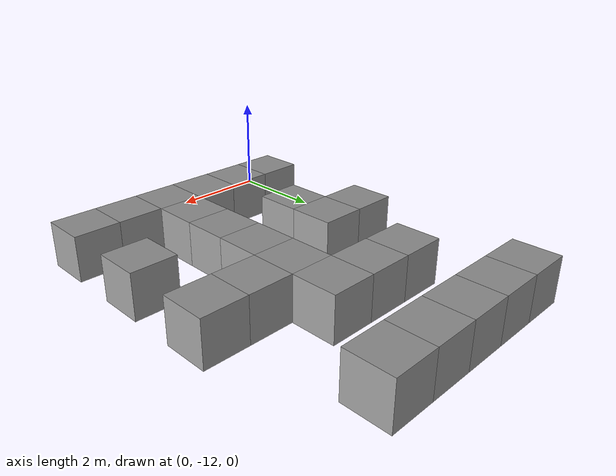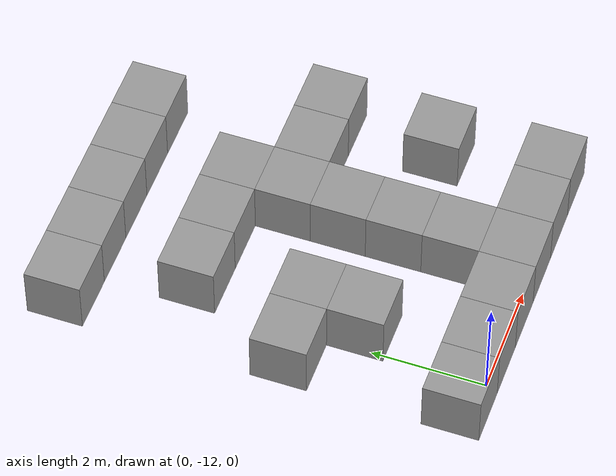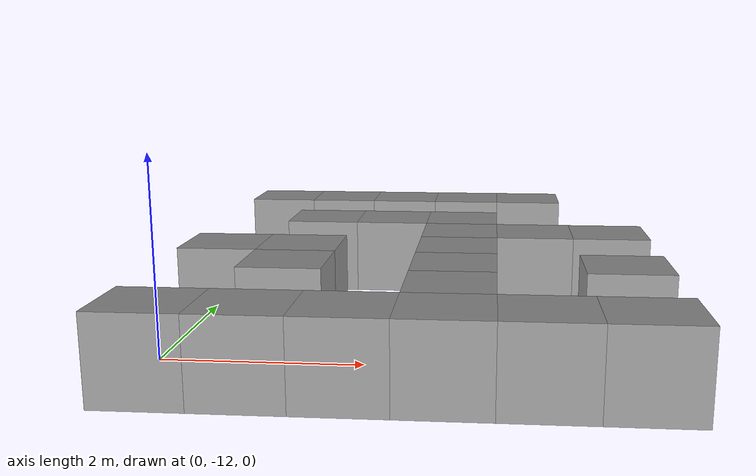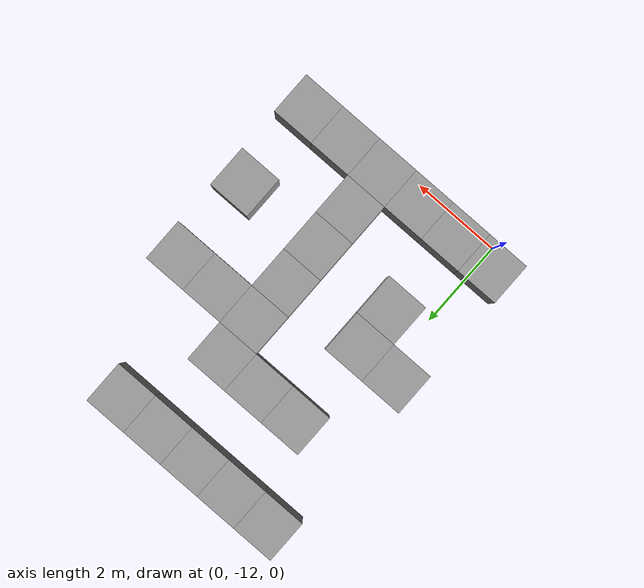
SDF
<sdf version="1.7">
 <model name="maze1">
  <link name="link_1_clone_159">
   <inertial>
    <mass>1</mass>
    <inertia>
     <ixx>0.166667</ixx>
     <ixy>0</ixy>
     <ixz>0</ixz>
     <iyy>0.166667</iyy>
     <iyz>0</iyz>
     <izz>0.166667</izz>
    </inertia>
   </inertial>
   <pose>3.75382 -7.62535 0 0 -0 0</pose>
   <visual name="visual">
    <geometry><box><size>1 1 1</size></box></geometry>
    <material>
     <lighting>1</lighting>
     <script><uri>file://media/materials/scripts/gazebo.material</uri><name>Gazebo/Grey</name></script>
     <shader type="pixel"><normal_map>__default__</normal_map></shader>
     <ambient>0.3 0.3 0.3 1</ambient>
     <diffuse>0.7 0.7 0.7 1</diffuse>
     <specular>0.01 0.01 0.01 1</specular>
     <emissive>0 0 0 1</emissive>
    </material>
   </visual>
   <collision name="collision">
    <geometry><box><size>1 1 1</size></box></geometry>
    <surface>
     <friction>
      <ode><mu>1</mu><mu2>1</mu2><fdir1>0 0 0</fdir1><slip1>0</slip1><slip2>0</slip2></ode>
      <torsional>
       <coefficient>1</coefficient>
       <patch_radius>0</patch_radius>
       <surface_radius>0</surface_radius>
       <use_patch_radius>1</use_patch_radius>
       <ode><slip>0</slip></ode>
      </torsional>
     </friction>
     <bounce><restitution_coefficient>0</restitution_coefficient><threshold>1e+06</threshold></bounce>
     <contact>
      <collide_without_contact>0</collide_without_contact>
      <collide_without_contact_bitmask>1</collide_without_contact_bitmask>
      <collide_bitmask>1</collide_bitmask>
      <ode>
       <soft_cfm>0</soft_cfm>
       <soft_erp>0.2</soft_erp>
       <kp>1e+13</kp>
       <kd>1</kd>
       <max_vel>0.01</max_vel>
       <min_depth>0</min_depth>
      </ode>
      <bullet>
       <split_impulse>1</split_impulse>
       <split_impulse_penetration_threshold>-0.01</split_impulse_penetration_threshold>
       <soft_cfm>0</soft_cfm>
       <soft_erp>0.2</soft_erp>
       <kp>1e+13</kp>
       <kd>1</kd>
      </bullet>
     </contact>
    </surface>
   </collision>
  </link>
  <link name="link_1_clone_161">
   <inertial>
    <mass>1</mass>
    <inertia>
     <ixx>0.166667</ixx>
     <ixy>0</ixy>
     <ixz>0</ixz>
     <iyy>0.166667</iyy>
     <iyz>0</iyz>
     <izz>0.166667</izz>
    </inertia>
   </inertial>
   <pose>4.75382 -7.62535 0 0 -0 0</pose>
   <visual name="visual">
    <geometry><box><size>1 1 1</size></box></geometry>
    <material>
     <lighting>1</lighting>
     <script><uri>file://media/materials/scripts/gazebo.material</uri><name>Gazebo/Grey</name></script>
     <shader type="pixel"><normal_map>__default__</normal_map></shader>
     <ambient>0.3 0.3 0.3 1</ambient>
     <diffuse>0.7 0.7 0.7 1</diffuse>
     <specular>0.01 0.01 0.01 1</specular>
     <emissive>0 0 0 1</emissive>
    </material>
   </visual>
   <collision name="collision">
    <geometry><box><size>1 1 1</size></box></geometry>
    <surface>
     <friction>
      <ode><mu>1</mu><mu2>1</mu2><fdir1>0 0 0</fdir1><slip1>0</slip1><slip2>0</slip2></ode>
      <torsional>
       <coefficient>1</coefficient>
       <patch_radius>0</patch_radius>
       <surface_radius>0</surface_radius>
       <use_patch_radius>1</use_patch_radius>
       <ode><slip>0</slip></ode>
      </torsional>
     </friction>
     <bounce><restitution_coefficient>0</restitution_coefficient><threshold>1e+06</threshold></bounce>
     <contact>
      <collide_without_contact>0</collide_without_contact>
      <collide_without_contact_bitmask>1</collide_without_contact_bitmask>
      <collide_bitmask>1</collide_bitmask>
      <ode>
       <soft_cfm>0</soft_cfm>
       <soft_erp>0.2</soft_erp>
       <kp>1e+13</kp>
       <kd>1</kd>
       <max_vel>0.01</max_vel>
       <min_depth>0</min_depth>
      </ode>
      <bullet>
       <split_impulse>1</split_impulse>
       <split_impulse_penetration_threshold>-0.01</split_impulse_penetration_threshold>
       <soft_cfm>0</soft_cfm>
       <soft_erp>0.2</soft_erp>
       <kp>1e+13</kp>
       <kd>1</kd>
      </bullet>
     </contact>
    </surface>
   </collision>
  </link>
  <link name="link_1_clone_170">
   <inertial>
    <mass>1</mass>
    <inertia>
     <ixx>0.166667</ixx>
     <ixy>0</ixy>
     <ixz>0</ixz>
     <iyy>0.166667</iyy>
     <iyz>0</iyz>
     <izz>0.166667</izz>
    </inertia>
   </inertial>
   <pose>3.75382 -4.62534 0 0 -0 0</pose>
   <visual name="visual">
    <geometry><box><size>1 1 1</size></box></geometry>
    <material>
     <lighting>1</lighting>
     <script><uri>file://media/materials/scripts/gazebo.material</uri><name>Gazebo/Grey</name></script>
     <shader type="pixel"><normal_map>__default__</normal_map></shader>
     <ambient>0.3 0.3 0.3 1</ambient>
     <diffuse>0.7 0.7 0.7 1</diffuse>
     <specular>0.01 0.01 0.01 1</specular>
     <emissive>0 0 0 1</emissive>
    </material>
   </visual>
   <collision name="collision">
    <geometry><box><size>1 1 1</size></box></geometry>
    <surface>
     <friction>
      <ode><mu>1</mu><mu2>1</mu2><fdir1>0 0 0</fdir1><slip1>0</slip1><slip2>0</slip2></ode>
      <torsional>
       <coefficient>1</coefficient>
       <patch_radius>0</patch_radius>
       <surface_radius>0</surface_radius>
       <use_patch_radius>1</use_patch_radius>
       <ode><slip>0</slip></ode>
      </torsional>
     </friction>
     <bounce><restitution_coefficient>0</restitution_coefficient><threshold>1e+06</threshold></bounce>
     <contact>
      <collide_without_contact>0</collide_without_contact>
      <collide_without_contact_bitmask>1</collide_without_contact_bitmask>
      <collide_bitmask>1</collide_bitmask>
      <ode>
       <soft_cfm>0</soft_cfm>
       <soft_erp>0.2</soft_erp>
       <kp>1e+13</kp>
       <kd>1</kd>
       <max_vel>0.01</max_vel>
       <min_depth>0</min_depth>
      </ode>
      <bullet>
       <split_impulse>1</split_impulse>
       <split_impulse_penetration_threshold>-0.01</split_impulse_penetration_threshold>
       <soft_cfm>0</soft_cfm>
       <soft_erp>0.2</soft_erp>
       <kp>1e+13</kp>
       <kd>1</kd>
      </bullet>
     </contact>
    </surface>
   </collision>
  </link>
  <link name="link_1_clone_171">
   <inertial>
    <mass>1</mass>
    <inertia>
     <ixx>0.166667</ixx>
     <ixy>0</ixy>
     <ixz>0</ixz>
     <iyy>0.166667</iyy>
     <iyz>0</iyz>
     <izz>0.166667</izz>
    </inertia>
   </inertial>
   <pose>2.75382 -4.62534 0 0 -0 0</pose>
   <visual name="visual">
    <geometry><box><size>1 1 1</size></box></geometry>
    <material>
     <lighting>1</lighting>
     <script><uri>file://media/materials/scripts/gazebo.material</uri><name>Gazebo/Grey</name></script>
     <shader type="pixel"><normal_map>__default__</normal_map></shader>
     <ambient>0.3 0.3 0.3 1</ambient>
     <diffuse>0.7 0.7 0.7 1</diffuse>
     <specular>0.01 0.01 0.01 1</specular>
     <emissive>0 0 0 1</emissive>
    </material>
   </visual>
   <collision name="collision">
    <geometry><box><size>1 1 1</size></box></geometry>
    <surface>
     <friction>
      <ode><mu>1</mu><mu2>1</mu2><fdir1>0 0 0</fdir1><slip1>0</slip1><slip2>0</slip2></ode>
      <torsional>
       <coefficient>1</coefficient>
       <patch_radius>0</patch_radius>
       <surface_radius>0</surface_radius>
       <use_patch_radius>1</use_patch_radius>
       <ode><slip>0</slip></ode>
      </torsional>
     </friction>
     <bounce><restitution_coefficient>0</restitution_coefficient><threshold>1e+06</threshold></bounce>
     <contact>
      <collide_without_contact>0</collide_without_contact>
      <collide_without_contact_bitmask>1</collide_without_contact_bitmask>
      <collide_bitmask>1</collide_bitmask>
      <ode>
       <soft_cfm>0</soft_cfm>
       <soft_erp>0.2</soft_erp>
       <kp>1e+13</kp>
       <kd>1</kd>
       <max_vel>0.01</max_vel>
       <min_depth>0</min_depth>
      </ode>
      <bullet>
       <split_impulse>1</split_impulse>
       <split_impulse_penetration_threshold>-0.01</split_impulse_penetration_threshold>
       <soft_cfm>0</soft_cfm>
       <soft_erp>0.2</soft_erp>
       <kp>1e+13</kp>
       <kd>1</kd>
      </bullet>
     </contact>
    </surface>
   </collision>
  </link>
  <link name="link_1_clone_183">
   <inertial>
    <mass>1</mass>
    <inertia>
     <ixx>0.166667</ixx>
     <ixy>0</ixy>
     <ixz>0</ixz>
     <iyy>0.166667</iyy>
     <iyz>0</iyz>
     <izz>0.166667</izz>
    </inertia>
   </inertial>
   <pose>4.75382 -9.62535 0 0 -0 0</pose>
   <visual name="visual">
    <geometry><box><size>1 1 1</size></box></geometry>
    <material>
     <lighting>1</lighting>
     <script><uri>file://media/materials/scripts/gazebo.material</uri><name>Gazebo/Grey</name></script>
     <shader type="pixel"><normal_map>__default__</normal_map></shader>
     <ambient>0.3 0.3 0.3 1</ambient>
     <diffuse>0.7 0.7 0.7 1</diffuse>
     <specular>0.01 0.01 0.01 1</specular>
     <emissive>0 0 0 1</emissive>
    </material>
   </visual>
   <collision name="collision">
    <geometry><box><size>1 1 1</size></box></geometry>
    <surface>
     <friction>
      <ode><mu>1</mu><mu2>1</mu2><fdir1>0 0 0</fdir1><slip1>0</slip1><slip2>0</slip2></ode>
      <torsional>
       <coefficient>1</coefficient>
       <patch_radius>0</patch_radius>
       <surface_radius>0</surface_radius>
       <use_patch_radius>1</use_patch_radius>
       <ode><slip>0</slip></ode>
      </torsional>
     </friction>
     <bounce><restitution_coefficient>0</restitution_coefficient><threshold>1e+06</threshold></bounce>
     <contact>
      <collide_without_contact>0</collide_without_contact>
      <collide_without_contact_bitmask>1</collide_without_contact_bitmask>
      <collide_bitmask>1</collide_bitmask>
      <ode>
       <soft_cfm>0</soft_cfm>
       <soft_erp>0.2</soft_erp>
       <kp>1e+13</kp>
       <kd>1</kd>
       <max_vel>0.01</max_vel>
       <min_depth>0</min_depth>
      </ode>
      <bullet>
       <split_impulse>1</split_impulse>
       <split_impulse_penetration_threshold>-0.01</split_impulse_penetration_threshold>
       <soft_cfm>0</soft_cfm>
       <soft_erp>0.2</soft_erp>
       <kp>1e+13</kp>
       <kd>1</kd>
      </bullet>
     </contact>
    </surface>
   </collision>
  </link>
  <link name="link_1_clone_184">
   <inertial>
    <mass>1</mass>
    <inertia>
     <ixx>0.166667</ixx>
     <ixy>0</ixy>
     <ixz>0</ixz>
     <iyy>0.166667</iyy>
     <iyz>0</iyz>
     <izz>0.166667</izz>
    </inertia>
   </inertial>
   <pose>2.75382 -9.62535 -0 0 -0 0</pose>
   <visual name="visual">
    <geometry><box><size>1 1 1</size></box></geometry>
    <material>
     <lighting>1</lighting>
     <script><uri>file://media/materials/scripts/gazebo.material</uri><name>Gazebo/Grey</name></script>
     <shader type="pixel"><normal_map>__default__</normal_map></shader>
     <ambient>0.3 0.3 0.3 1</ambient>
     <diffuse>0.7 0.7 0.7 1</diffuse>
     <specular>0.01 0.01 0.01 1</specular>
     <emissive>0 0 0 1</emissive>
    </material>
   </visual>
   <collision name="collision">
    <geometry><box><size>1 1 1</size></box></geometry>
    <surface>
     <friction>
      <ode><mu>1</mu><mu2>1</mu2><fdir1>0 0 0</fdir1><slip1>0</slip1><slip2>0</slip2></ode>
      <torsional>
       <coefficient>1</coefficient>
       <patch_radius>0</patch_radius>
       <surface_radius>0</surface_radius>
       <use_patch_radius>1</use_patch_radius>
       <ode><slip>0</slip></ode>
      </torsional>
     </friction>
     <bounce><restitution_coefficient>0</restitution_coefficient><threshold>1e+06</threshold></bounce>
     <contact>
      <collide_without_contact>0</collide_without_contact>
      <collide_without_contact_bitmask>1</collide_without_contact_bitmask>
      <collide_bitmask>1</collide_bitmask>
      <ode>
       <soft_cfm>0</soft_cfm>
       <soft_erp>0.2</soft_erp>
       <kp>1e+13</kp>
       <kd>1</kd>
       <max_vel>0.01</max_vel>
       <min_depth>0</min_depth>
      </ode>
      <bullet>
       <split_impulse>1</split_impulse>
       <split_impulse_penetration_threshold>-0.01</split_impulse_penetration_threshold>
       <soft_cfm>0</soft_cfm>
       <soft_erp>0.2</soft_erp>
       <kp>1e+13</kp>
       <kd>1</kd>
      </bullet>
     </contact>
    </surface>
   </collision>
  </link>
  <link name="link_1_clone_185">
   <inertial>
    <mass>1</mass>
    <inertia>
     <ixx>0.166667</ixx>
     <ixy>0</ixy>
     <ixz>0</ixz>
     <iyy>0.166667</iyy>
     <iyz>0</iyz>
     <izz>0.166667</izz>
    </inertia>
   </inertial>
   <pose>2.75382 -10.6254 -0 0 -0 0</pose>
   <visual name="visual">
    <geometry><box><size>1 1 1</size></box></geometry>
    <material>
     <lighting>1</lighting>
     <script><uri>file://media/materials/scripts/gazebo.material</uri><name>Gazebo/Grey</name></script>
     <shader type="pixel"><normal_map>__default__</normal_map></shader>
     <ambient>0.3 0.3 0.3 1</ambient>
     <diffuse>0.7 0.7 0.7 1</diffuse>
     <specular>0.01 0.01 0.01 1</specular>
     <emissive>0 0 0 1</emissive>
    </material>
   </visual>
   <collision name="collision">
    <geometry><box><size>1 1 1</size></box></geometry>
    <surface>
     <friction>
      <ode><mu>1</mu><mu2>1</mu2><fdir1>0 0 0</fdir1><slip1>0</slip1><slip2>0</slip2></ode>
      <torsional>
       <coefficient>1</coefficient>
       <patch_radius>0</patch_radius>
       <surface_radius>0</surface_radius>
       <use_patch_radius>1</use_patch_radius>
       <ode><slip>0</slip></ode>
      </torsional>
     </friction>
     <bounce><restitution_coefficient>0</restitution_coefficient><threshold>1e+06</threshold></bounce>
     <contact>
      <collide_without_contact>0</collide_without_contact>
      <collide_without_contact_bitmask>1</collide_without_contact_bitmask>
      <collide_bitmask>1</collide_bitmask>
      <ode>
       <soft_cfm>0</soft_cfm>
       <soft_erp>0.2</soft_erp>
       <kp>1e+13</kp>
       <kd>1</kd>
       <max_vel>0.01</max_vel>
       <min_depth>0</min_depth>
      </ode>
      <bullet>
       <split_impulse>1</split_impulse>
       <split_impulse_penetration_threshold>-0.01</split_impulse_penetration_threshold>
       <soft_cfm>0</soft_cfm>
       <soft_erp>0.2</soft_erp>
       <kp>1e+13</kp>
       <kd>1</kd>
      </bullet>
     </contact>
    </surface>
   </collision>
  </link>
  <link name="link_1_clone_186">
   <inertial>
    <mass>1</mass>
    <inertia>
     <ixx>0.166667</ixx>
     <ixy>0</ixy>
     <ixz>0</ixz>
     <iyy>0.166667</iyy>
     <iyz>0</iyz>
     <izz>0.166667</izz>
    </inertia>
   </inertial>
   <pose>2.75382 -8.62535 -0 0 -0 0</pose>
   <visual name="visual">
    <geometry><box><size>1 1 1</size></box></geometry>
    <material>
     <lighting>1</lighting>
     <script><uri>file://media/materials/scripts/gazebo.material</uri><name>Gazebo/Grey</name></script>
     <shader type="pixel"><normal_map>__default__</normal_map></shader>
     <ambient>0.3 0.3 0.3 1</ambient>
     <diffuse>0.7 0.7 0.7 1</diffuse>
     <specular>0.01 0.01 0.01 1</specular>
     <emissive>0 0 0 1</emissive>
    </material>
   </visual>
   <collision name="collision">
    <geometry><box><size>1 1 1</size></box></geometry>
    <surface>
     <friction>
      <ode><mu>1</mu><mu2>1</mu2><fdir1>0 0 0</fdir1><slip1>0</slip1><slip2>0</slip2></ode>
      <torsional>
       <coefficient>1</coefficient>
       <patch_radius>0</patch_radius>
       <surface_radius>0</surface_radius>
       <use_patch_radius>1</use_patch_radius>
       <ode><slip>0</slip></ode>
      </torsional>
     </friction>
     <bounce><restitution_coefficient>0</restitution_coefficient><threshold>1e+06</threshold></bounce>
     <contact>
      <collide_without_contact>0</collide_without_contact>
      <collide_without_contact_bitmask>1</collide_without_contact_bitmask>
      <collide_bitmask>1</collide_bitmask>
      <ode>
       <soft_cfm>0</soft_cfm>
       <soft_erp>0.2</soft_erp>
       <kp>1e+13</kp>
       <kd>1</kd>
       <max_vel>0.01</max_vel>
       <min_depth>0</min_depth>
      </ode>
      <bullet>
       <split_impulse>1</split_impulse>
       <split_impulse_penetration_threshold>-0.01</split_impulse_penetration_threshold>
       <soft_cfm>0</soft_cfm>
       <soft_erp>0.2</soft_erp>
       <kp>1e+13</kp>
       <kd>1</kd>
      </bullet>
     </contact>
    </surface>
   </collision>
  </link>
  <link name="link_1_clone_187">
   <inertial>
    <mass>1</mass>
    <inertia>
     <ixx>0.166667</ixx>
     <ixy>0</ixy>
     <ixz>0</ixz>
     <iyy>0.166667</iyy>
     <iyz>0</iyz>
     <izz>0.166667</izz>
    </inertia>
   </inertial>
   <pose>2.75382 -7.62535 0 0 -0 0</pose>
   <visual name="visual">
    <geometry><box><size>1 1 1</size></box></geometry>
    <material>
     <lighting>1</lighting>
     <script><uri>file://media/materials/scripts/gazebo.material</uri><name>Gazebo/Grey</name></script>
     <shader type="pixel"><normal_map>__default__</normal_map></shader>
     <ambient>0.3 0.3 0.3 1</ambient>
     <diffuse>0.7 0.7 0.7 1</diffuse>
     <specular>0.01 0.01 0.01 1</specular>
     <emissive>0 0 0 1</emissive>
    </material>
   </visual>
   <collision name="collision">
    <geometry><box><size>1 1 1</size></box></geometry>
    <surface>
     <friction>
      <ode><mu>1</mu><mu2>1</mu2><fdir1>0 0 0</fdir1><slip1>0</slip1><slip2>0</slip2></ode>
      <torsional>
       <coefficient>1</coefficient>
       <patch_radius>0</patch_radius>
       <surface_radius>0</surface_radius>
       <use_patch_radius>1</use_patch_radius>
       <ode><slip>0</slip></ode>
      </torsional>
     </friction>
     <bounce><restitution_coefficient>0</restitution_coefficient><threshold>1e+06</threshold></bounce>
     <contact>
      <collide_without_contact>0</collide_without_contact>
      <collide_without_contact_bitmask>1</collide_without_contact_bitmask>
      <collide_bitmask>1</collide_bitmask>
      <ode>
       <soft_cfm>0</soft_cfm>
       <soft_erp>0.2</soft_erp>
       <kp>1e+13</kp>
       <kd>1</kd>
       <max_vel>0.01</max_vel>
       <min_depth>0</min_depth>
      </ode>
      <bullet>
       <split_impulse>1</split_impulse>
       <split_impulse_penetration_threshold>-0.01</split_impulse_penetration_threshold>
       <soft_cfm>0</soft_cfm>
       <soft_erp>0.2</soft_erp>
       <kp>1e+13</kp>
       <kd>1</kd>
      </bullet>
     </contact>
    </surface>
   </collision>
  </link>
  <link name="link_1_clone_188">
   <inertial>
    <mass>1</mass>
    <inertia>
     <ixx>0.166667</ixx>
     <ixy>0</ixy>
     <ixz>0</ixz>
     <iyy>0.166667</iyy>
     <iyz>0</iyz>
     <izz>0.166667</izz>
    </inertia>
   </inertial>
   <pose>2.75382 -6.62535 0 0 -0 0</pose>
   <visual name="visual">
    <geometry><box><size>1 1 1</size></box></geometry>
    <material>
     <lighting>1</lighting>
     <script><uri>file://media/materials/scripts/gazebo.material</uri><name>Gazebo/Grey</name></script>
     <shader type="pixel"><normal_map>__default__</normal_map></shader>
     <ambient>0.3 0.3 0.3 1</ambient>
     <diffuse>0.7 0.7 0.7 1</diffuse>
     <specular>0.01 0.01 0.01 1</specular>
     <emissive>0 0 0 1</emissive>
    </material>
   </visual>
   <collision name="collision">
    <geometry><box><size>1 1 1</size></box></geometry>
    <surface>
     <friction>
      <ode><mu>1</mu><mu2>1</mu2><fdir1>0 0 0</fdir1><slip1>0</slip1><slip2>0</slip2></ode>
      <torsional>
       <coefficient>1</coefficient>
       <patch_radius>0</patch_radius>
       <surface_radius>0</surface_radius>
       <use_patch_radius>1</use_patch_radius>
       <ode><slip>0</slip></ode>
      </torsional>
     </friction>
     <bounce><restitution_coefficient>0</restitution_coefficient><threshold>1e+06</threshold></bounce>
     <contact>
      <collide_without_contact>0</collide_without_contact>
      <collide_without_contact_bitmask>1</collide_without_contact_bitmask>
      <collide_bitmask>1</collide_bitmask>
      <ode>
       <soft_cfm>0</soft_cfm>
       <soft_erp>0.2</soft_erp>
       <kp>1e+13</kp>
       <kd>1</kd>
       <max_vel>0.01</max_vel>
       <min_depth>0</min_depth>
      </ode>
      <bullet>
       <split_impulse>1</split_impulse>
       <split_impulse_penetration_threshold>-0.01</split_impulse_penetration_threshold>
       <soft_cfm>0</soft_cfm>
       <soft_erp>0.2</soft_erp>
       <kp>1e+13</kp>
       <kd>1</kd>
      </bullet>
     </contact>
    </surface>
   </collision>
  </link>
  <link name="link_1_clone_189">
   <inertial>
    <mass>1</mass>
    <inertia>
     <ixx>0.166667</ixx>
     <ixy>0</ixy>
     <ixz>0</ixz>
     <iyy>0.166667</iyy>
     <iyz>0</iyz>
     <izz>0.166667</izz>
    </inertia>
   </inertial>
   <pose>1.75382 -6.62535 -0 0 -0 0</pose>
   <visual name="visual">
    <geometry><box><size>1 1 1</size></box></geometry>
    <material>
     <lighting>1</lighting>
     <script><uri>file://media/materials/scripts/gazebo.material</uri><name>Gazebo/Grey</name></script>
     <shader type="pixel"><normal_map>__default__</normal_map></shader>
     <ambient>0.3 0.3 0.3 1</ambient>
     <diffuse>0.7 0.7 0.7 1</diffuse>
     <specular>0.01 0.01 0.01 1</specular>
     <emissive>0 0 0 1</emissive>
    </material>
   </visual>
   <collision name="collision">
    <geometry><box><size>1 1 1</size></box></geometry>
    <surface>
     <friction>
      <ode><mu>1</mu><mu2>1</mu2><fdir1>0 0 0</fdir1><slip1>0</slip1><slip2>0</slip2></ode>
      <torsional>
       <coefficient>1</coefficient>
       <patch_radius>0</patch_radius>
       <surface_radius>0</surface_radius>
       <use_patch_radius>1</use_patch_radius>
       <ode><slip>0</slip></ode>
      </torsional>
     </friction>
     <bounce><restitution_coefficient>0</restitution_coefficient><threshold>1e+06</threshold></bounce>
     <contact>
      <collide_without_contact>0</collide_without_contact>
      <collide_without_contact_bitmask>1</collide_without_contact_bitmask>
      <collide_bitmask>1</collide_bitmask>
      <ode>
       <soft_cfm>0</soft_cfm>
       <soft_erp>0.2</soft_erp>
       <kp>1e+13</kp>
       <kd>1</kd>
       <max_vel>0.01</max_vel>
       <min_depth>0</min_depth>
      </ode>
      <bullet>
       <split_impulse>1</split_impulse>
       <split_impulse_penetration_threshold>-0.01</split_impulse_penetration_threshold>
       <soft_cfm>0</soft_cfm>
       <soft_erp>0.2</soft_erp>
       <kp>1e+13</kp>
       <kd>1</kd>
      </bullet>
     </contact>
    </surface>
   </collision>
  </link>
  <link name="link_1_clone_190">
   <inertial>
    <mass>1</mass>
    <inertia>
     <ixx>0.166667</ixx>
     <ixy>0</ixy>
     <ixz>0</ixz>
     <iyy>0.166667</iyy>
     <iyz>0</iyz>
     <izz>0.166667</izz>
    </inertia>
   </inertial>
   <pose>0.753816 -6.62535 -0 0 -0 0</pose>
   <visual name="visual">
    <geometry><box><size>1 1 1</size></box></geometry>
    <material>
     <lighting>1</lighting>
     <script><uri>file://media/materials/scripts/gazebo.material</uri><name>Gazebo/Grey</name></script>
     <shader type="pixel"><normal_map>__default__</normal_map></shader>
     <ambient>0.3 0.3 0.3 1</ambient>
     <diffuse>0.7 0.7 0.7 1</diffuse>
     <specular>0.01 0.01 0.01 1</specular>
     <emissive>0 0 0 1</emissive>
    </material>
   </visual>
   <collision name="collision">
    <geometry><box><size>1 1 1</size></box></geometry>
    <surface>
     <friction>
      <ode><mu>1</mu><mu2>1</mu2><fdir1>0 0 0</fdir1><slip1>0</slip1><slip2>0</slip2></ode>
      <torsional>
       <coefficient>1</coefficient>
       <patch_radius>0</patch_radius>
       <surface_radius>0</surface_radius>
       <use_patch_radius>1</use_patch_radius>
       <ode><slip>0</slip></ode>
      </torsional>
     </friction>
     <bounce><restitution_coefficient>0</restitution_coefficient><threshold>1e+06</threshold></bounce>
     <contact>
      <collide_without_contact>0</collide_without_contact>
      <collide_without_contact_bitmask>1</collide_without_contact_bitmask>
      <collide_bitmask>1</collide_bitmask>
      <ode>
       <soft_cfm>0</soft_cfm>
       <soft_erp>0.2</soft_erp>
       <kp>1e+13</kp>
       <kd>1</kd>
       <max_vel>0.01</max_vel>
       <min_depth>0</min_depth>
      </ode>
      <bullet>
       <split_impulse>1</split_impulse>
       <split_impulse_penetration_threshold>-0.01</split_impulse_penetration_threshold>
       <soft_cfm>0</soft_cfm>
       <soft_erp>0.2</soft_erp>
       <kp>1e+13</kp>
       <kd>1</kd>
      </bullet>
     </contact>
    </surface>
   </collision>
  </link>
  <link name="link_1_clone_191">
   <inertial>
    <mass>1</mass>
    <inertia>
     <ixx>0.166667</ixx>
     <ixy>0</ixy>
     <ixz>0</ixz>
     <iyy>0.166667</iyy>
     <iyz>0</iyz>
     <izz>0.166667</izz>
    </inertia>
   </inertial>
   <pose>1.75382 -4.62534 0 0 -0 0</pose>
   <visual name="visual">
    <geometry><box><size>1 1 1</size></box></geometry>
    <material>
     <lighting>1</lighting>
     <script><uri>file://media/materials/scripts/gazebo.material</uri><name>Gazebo/Grey</name></script>
     <shader type="pixel"><normal_map>__default__</normal_map></shader>
     <ambient>0.3 0.3 0.3 1</ambient>
     <diffuse>0.7 0.7 0.7 1</diffuse>
     <specular>0.01 0.01 0.01 1</specular>
     <emissive>0 0 0 1</emissive>
    </material>
   </visual>
   <collision name="collision">
    <geometry><box><size>1 1 1</size></box></geometry>
    <surface>
     <friction>
      <ode><mu>1</mu><mu2>1</mu2><fdir1>0 0 0</fdir1><slip1>0</slip1><slip2>0</slip2></ode>
      <torsional>
       <coefficient>1</coefficient>
       <patch_radius>0</patch_radius>
       <surface_radius>0</surface_radius>
       <use_patch_radius>1</use_patch_radius>
       <ode><slip>0</slip></ode>
      </torsional>
     </friction>
     <bounce><restitution_coefficient>0</restitution_coefficient><threshold>1e+06</threshold></bounce>
     <contact>
      <collide_without_contact>0</collide_without_contact>
      <collide_without_contact_bitmask>1</collide_without_contact_bitmask>
      <collide_bitmask>1</collide_bitmask>
      <ode>
       <soft_cfm>0</soft_cfm>
       <soft_erp>0.2</soft_erp>
       <kp>1e+13</kp>
       <kd>1</kd>
       <max_vel>0.01</max_vel>
       <min_depth>0</min_depth>
      </ode>
      <bullet>
       <split_impulse>1</split_impulse>
       <split_impulse_penetration_threshold>-0.01</split_impulse_penetration_threshold>
       <soft_cfm>0</soft_cfm>
       <soft_erp>0.2</soft_erp>
       <kp>1e+13</kp>
       <kd>1</kd>
      </bullet>
     </contact>
    </surface>
   </collision>
  </link>
  <link name="link_1_clone_192">
   <inertial>
    <mass>1</mass>
    <inertia>
     <ixx>0.166667</ixx>
     <ixy>0</ixy>
     <ixz>0</ixz>
     <iyy>0.166667</iyy>
     <iyz>0</iyz>
     <izz>0.166667</izz>
    </inertia>
   </inertial>
   <pose>0.753816 -4.62534 -0 0 -0 0</pose>
   <visual name="visual">
    <geometry><box><size>1 1 1</size></box></geometry>
    <material>
     <lighting>1</lighting>
     <script><uri>file://media/materials/scripts/gazebo.material</uri><name>Gazebo/Grey</name></script>
     <shader type="pixel"><normal_map>__default__</normal_map></shader>
     <ambient>0.3 0.3 0.3 1</ambient>
     <diffuse>0.7 0.7 0.7 1</diffuse>
     <specular>0.01 0.01 0.01 1</specular>
     <emissive>0 0 0 1</emissive>
    </material>
   </visual>
   <collision name="collision">
    <geometry><box><size>1 1 1</size></box></geometry>
    <surface>
     <friction>
      <ode><mu>1</mu><mu2>1</mu2><fdir1>0 0 0</fdir1><slip1>0</slip1><slip2>0</slip2></ode>
      <torsional>
       <coefficient>1</coefficient>
       <patch_radius>0</patch_radius>
       <surface_radius>0</surface_radius>
       <use_patch_radius>1</use_patch_radius>
       <ode><slip>0</slip></ode>
      </torsional>
     </friction>
     <bounce><restitution_coefficient>0</restitution_coefficient><threshold>1e+06</threshold></bounce>
     <contact>
      <collide_without_contact>0</collide_without_contact>
      <collide_without_contact_bitmask>1</collide_without_contact_bitmask>
      <collide_bitmask>1</collide_bitmask>
      <ode>
       <soft_cfm>0</soft_cfm>
       <soft_erp>0.2</soft_erp>
       <kp>1e+13</kp>
       <kd>1</kd>
       <max_vel>0.01</max_vel>
       <min_depth>0</min_depth>
      </ode>
      <bullet>
       <split_impulse>1</split_impulse>
       <split_impulse_penetration_threshold>-0.01</split_impulse_penetration_threshold>
       <soft_cfm>0</soft_cfm>
       <soft_erp>0.2</soft_erp>
       <kp>1e+13</kp>
       <kd>1</kd>
      </bullet>
     </contact>
    </surface>
   </collision>
  </link>
  <link name="link_1_clone_193">
   <inertial>
    <mass>1</mass>
    <inertia>
     <ixx>0.166667</ixx>
     <ixy>0</ixy>
     <ixz>0</ixz>
     <iyy>0.166667</iyy>
     <iyz>0</iyz>
     <izz>0.166667</izz>
    </inertia>
   </inertial>
   <pose>-0.246184 -4.62534 -0 0 -0 0</pose>
   <visual name="visual">
    <geometry><box><size>1 1 1</size></box></geometry>
    <material>
     <lighting>1</lighting>
     <script><uri>file://media/materials/scripts/gazebo.material</uri><name>Gazebo/Grey</name></script>
     <shader type="pixel"><normal_map>__default__</normal_map></shader>
     <ambient>0.3 0.3 0.3 1</ambient>
     <diffuse>0.7 0.7 0.7 1</diffuse>
     <specular>0.01 0.01 0.01 1</specular>
     <emissive>0 0 0 1</emissive>
    </material>
   </visual>
   <collision name="collision">
    <geometry><box><size>1 1 1</size></box></geometry>
    <surface>
     <friction>
      <ode><mu>1</mu><mu2>1</mu2><fdir1>0 0 0</fdir1><slip1>0</slip1><slip2>0</slip2></ode>
      <torsional>
       <coefficient>1</coefficient>
       <patch_radius>0</patch_radius>
       <surface_radius>0</surface_radius>
       <use_patch_radius>1</use_patch_radius>
       <ode><slip>0</slip></ode>
      </torsional>
     </friction>
     <bounce><restitution_coefficient>0</restitution_coefficient><threshold>1e+06</threshold></bounce>
     <contact>
      <collide_without_contact>0</collide_without_contact>
      <collide_without_contact_bitmask>1</collide_without_contact_bitmask>
      <collide_bitmask>1</collide_bitmask>
      <ode>
       <soft_cfm>0</soft_cfm>
       <soft_erp>0.2</soft_erp>
       <kp>1e+13</kp>
       <kd>1</kd>
       <max_vel>0.01</max_vel>
       <min_depth>0</min_depth>
      </ode>
      <bullet>
       <split_impulse>1</split_impulse>
       <split_impulse_penetration_threshold>-0.01</split_impulse_penetration_threshold>
       <soft_cfm>0</soft_cfm>
       <soft_erp>0.2</soft_erp>
       <kp>1e+13</kp>
       <kd>1</kd>
      </bullet>
     </contact>
    </surface>
   </collision>
  </link>
  <link name="link_1_clone_200">
   <inertial>
    <mass>1</mass>
    <inertia>
     <ixx>0.166667</ixx>
     <ixy>0</ixy>
     <ixz>0</ixz>
     <iyy>0.166667</iyy>
     <iyz>0</iyz>
     <izz>0.166667</izz>
    </inertia>
   </inertial>
   <pose>-0.246184 -8.62535 -0 0 -0 0</pose>
   <visual name="visual">
    <geometry><box><size>1 1 1</size></box></geometry>
    <material>
     <lighting>1</lighting>
     <script><uri>file://media/materials/scripts/gazebo.material</uri><name>Gazebo/Grey</name></script>
     <shader type="pixel"><normal_map>__default__</normal_map></shader>
     <ambient>0.3 0.3 0.3 1</ambient>
     <diffuse>0.7 0.7 0.7 1</diffuse>
     <specular>0.01 0.01 0.01 1</specular>
     <emissive>0 0 0 1</emissive>
    </material>
   </visual>
   <collision name="collision">
    <geometry><box><size>1 1 1</size></box></geometry>
    <surface>
     <friction>
      <ode><mu>1</mu><mu2>1</mu2><fdir1>0 0 0</fdir1><slip1>0</slip1><slip2>0</slip2></ode>
      <torsional>
       <coefficient>1</coefficient>
       <patch_radius>0</patch_radius>
       <surface_radius>0</surface_radius>
       <use_patch_radius>1</use_patch_radius>
       <ode><slip>0</slip></ode>
      </torsional>
     </friction>
     <bounce><restitution_coefficient>0</restitution_coefficient><threshold>1e+06</threshold></bounce>
     <contact>
      <collide_without_contact>0</collide_without_contact>
      <collide_without_contact_bitmask>1</collide_without_contact_bitmask>
      <collide_bitmask>1</collide_bitmask>
      <ode>
       <soft_cfm>0</soft_cfm>
       <soft_erp>0.2</soft_erp>
       <kp>1e+13</kp>
       <kd>1</kd>
       <max_vel>0.01</max_vel>
       <min_depth>0</min_depth>
      </ode>
      <bullet>
       <split_impulse>1</split_impulse>
       <split_impulse_penetration_threshold>-0.01</split_impulse_penetration_threshold>
       <soft_cfm>0</soft_cfm>
       <soft_erp>0.2</soft_erp>
       <kp>1e+13</kp>
       <kd>1</kd>
      </bullet>
     </contact>
    </surface>
   </collision>
  </link>
  <link name="link_1_clone_201">
   <inertial>
    <mass>1</mass>
    <inertia>
     <ixx>0.166667</ixx>
     <ixy>0</ixy>
     <ixz>0</ixz>
     <iyy>0.166667</iyy>
     <iyz>0</iyz>
     <izz>0.166667</izz>
    </inertia>
   </inertial>
   <pose>0.753816 -8.62535 -0 0 -0 0</pose>
   <visual name="visual">
    <geometry><box><size>1 1 1</size></box></geometry>
    <material>
     <lighting>1</lighting>
     <script><uri>file://media/materials/scripts/gazebo.material</uri><name>Gazebo/Grey</name></script>
     <shader type="pixel"><normal_map>__default__</normal_map></shader>
     <ambient>0.3 0.3 0.3 1</ambient>
     <diffuse>0.7 0.7 0.7 1</diffuse>
     <specular>0.01 0.01 0.01 1</specular>
     <emissive>0 0 0 1</emissive>
    </material>
   </visual>
   <collision name="collision">
    <geometry><box><size>1 1 1</size></box></geometry>
    <surface>
     <friction>
      <ode><mu>1</mu><mu2>1</mu2><fdir1>0 0 0</fdir1><slip1>0</slip1><slip2>0</slip2></ode>
      <torsional>
       <coefficient>1</coefficient>
       <patch_radius>0</patch_radius>
       <surface_radius>0</surface_radius>
       <use_patch_radius>1</use_patch_radius>
       <ode><slip>0</slip></ode>
      </torsional>
     </friction>
     <bounce><restitution_coefficient>0</restitution_coefficient><threshold>1e+06</threshold></bounce>
     <contact>
      <collide_without_contact>0</collide_without_contact>
      <collide_without_contact_bitmask>1</collide_without_contact_bitmask>
      <collide_bitmask>1</collide_bitmask>
      <ode>
       <soft_cfm>0</soft_cfm>
       <soft_erp>0.2</soft_erp>
       <kp>1e+13</kp>
       <kd>1</kd>
       <max_vel>0.01</max_vel>
       <min_depth>0</min_depth>
      </ode>
      <bullet>
       <split_impulse>1</split_impulse>
       <split_impulse_penetration_threshold>-0.01</split_impulse_penetration_threshold>
       <soft_cfm>0</soft_cfm>
       <soft_erp>0.2</soft_erp>
       <kp>1e+13</kp>
       <kd>1</kd>
      </bullet>
     </contact>
    </surface>
   </collision>
  </link>
  <link name="link_1_clone_202">
   <inertial>
    <mass>1</mass>
    <inertia>
     <ixx>0.166667</ixx>
     <ixy>0</ixy>
     <ixz>0</ixz>
     <iyy>0.166667</iyy>
     <iyz>0</iyz>
     <izz>0.166667</izz>
    </inertia>
   </inertial>
   <pose>0.753816 -9.62535 -0 0 -0 0</pose>
   <visual name="visual">
    <geometry><box><size>1 1 1</size></box></geometry>
    <material>
     <lighting>1</lighting>
     <script><uri>file://media/materials/scripts/gazebo.material</uri><name>Gazebo/Grey</name></script>
     <shader type="pixel"><normal_map>__default__</normal_map></shader>
     <ambient>0.3 0.3 0.3 1</ambient>
     <diffuse>0.7 0.7 0.7 1</diffuse>
     <specular>0.01 0.01 0.01 1</specular>
     <emissive>0 0 0 1</emissive>
    </material>
   </visual>
   <collision name="collision">
    <geometry><box><size>1 1 1</size></box></geometry>
    <surface>
     <friction>
      <ode><mu>1</mu><mu2>1</mu2><fdir1>0 0 0</fdir1><slip1>0</slip1><slip2>0</slip2></ode>
      <torsional>
       <coefficient>1</coefficient>
       <patch_radius>0</patch_radius>
       <surface_radius>0</surface_radius>
       <use_patch_radius>1</use_patch_radius>
       <ode><slip>0</slip></ode>
      </torsional>
     </friction>
     <bounce><restitution_coefficient>0</restitution_coefficient><threshold>1e+06</threshold></bounce>
     <contact>
      <collide_without_contact>0</collide_without_contact>
      <collide_without_contact_bitmask>1</collide_without_contact_bitmask>
      <collide_bitmask>1</collide_bitmask>
      <ode>
       <soft_cfm>0</soft_cfm>
       <soft_erp>0.2</soft_erp>
       <kp>1e+13</kp>
       <kd>1</kd>
       <max_vel>0.01</max_vel>
       <min_depth>0</min_depth>
      </ode>
      <bullet>
       <split_impulse>1</split_impulse>
       <split_impulse_penetration_threshold>-0.01</split_impulse_penetration_threshold>
       <soft_cfm>0</soft_cfm>
       <soft_erp>0.2</soft_erp>
       <kp>1e+13</kp>
       <kd>1</kd>
      </bullet>
     </contact>
    </surface>
   </collision>
  </link>
  <link name="link_1_clone_44">
   <inertial>
    <mass>1</mass>
    <inertia>
     <ixx>0.166667</ixx>
     <ixy>0</ixy>
     <ixz>0</ixz>
     <iyy>0.166667</iyy>
     <iyz>0</iyz>
     <izz>0.166667</izz>
    </inertia>
   </inertial>
   <pose>-0.246184 -11.6253 -0 0 -0 0</pose>
   <visual name="visual">
    <geometry><box><size>1 1 1</size></box></geometry>
    <material>
     <lighting>1</lighting>
     <script><uri>file://media/materials/scripts/gazebo.material</uri><name>Gazebo/Grey</name></script>
     <shader type="pixel"><normal_map>__default__</normal_map></shader>
     <ambient>0.3 0.3 0.3 1</ambient>
     <diffuse>0.7 0.7 0.7 1</diffuse>
     <specular>0.01 0.01 0.01 1</specular>
     <emissive>0 0 0 1</emissive>
    </material>
   </visual>
   <collision name="collision">
    <geometry><box><size>1 1 1</size></box></geometry>
    <surface>
     <friction>
      <ode><mu>1</mu><mu2>1</mu2><fdir1>0 0 0</fdir1><slip1>0</slip1><slip2>0</slip2></ode>
      <torsional>
       <coefficient>1</coefficient>
       <patch_radius>0</patch_radius>
       <surface_radius>0</surface_radius>
       <use_patch_radius>1</use_patch_radius>
       <ode><slip>0</slip></ode>
      </torsional>
     </friction>
     <bounce><restitution_coefficient>0</restitution_coefficient><threshold>1e+06</threshold></bounce>
     <contact>
      <collide_without_contact>0</collide_without_contact>
      <collide_without_contact_bitmask>1</collide_without_contact_bitmask>
      <collide_bitmask>1</collide_bitmask>
      <ode>
       <soft_cfm>0</soft_cfm>
       <soft_erp>0.2</soft_erp>
       <kp>1e+13</kp>
       <kd>1</kd>
       <max_vel>0.01</max_vel>
       <min_depth>0</min_depth>
      </ode>
      <bullet>
       <split_impulse>1</split_impulse>
       <split_impulse_penetration_threshold>-0.01</split_impulse_penetration_threshold>
       <soft_cfm>0</soft_cfm>
       <soft_erp>0.2</soft_erp>
       <kp>1e+13</kp>
       <kd>1</kd>
      </bullet>
     </contact>
    </surface>
   </collision>
  </link>
  <link name="link_1_clone_45">
   <inertial>
    <mass>1</mass>
    <inertia>
     <ixx>0.166667</ixx>
     <ixy>0</ixy>
     <ixz>0</ixz>
     <iyy>0.166667</iyy>
     <iyz>0</iyz>
     <izz>0.166667</izz>
    </inertia>
   </inertial>
   <pose>0.753816 -11.6253 -0 0 -0 0</pose>
   <visual name="visual">
    <geometry><box><size>1 1 1</size></box></geometry>
    <material>
     <lighting>1</lighting>
     <script><uri>file://media/materials/scripts/gazebo.material</uri><name>Gazebo/Grey</name></script>
     <shader type="pixel"><normal_map>__default__</normal_map></shader>
     <ambient>0.3 0.3 0.3 1</ambient>
     <diffuse>0.7 0.7 0.7 1</diffuse>
     <specular>0.01 0.01 0.01 1</specular>
     <emissive>0 0 0 1</emissive>
    </material>
   </visual>
   <collision name="collision">
    <geometry><box><size>1 1 1</size></box></geometry>
    <surface>
     <friction>
      <ode><mu>1</mu><mu2>1</mu2><fdir1>0 0 0</fdir1><slip1>0</slip1><slip2>0</slip2></ode>
      <torsional>
       <coefficient>1</coefficient>
       <patch_radius>0</patch_radius>
       <surface_radius>0</surface_radius>
       <use_patch_radius>1</use_patch_radius>
       <ode><slip>0</slip></ode>
      </torsional>
     </friction>
     <bounce><restitution_coefficient>0</restitution_coefficient><threshold>1e+06</threshold></bounce>
     <contact>
      <collide_without_contact>0</collide_without_contact>
      <collide_without_contact_bitmask>1</collide_without_contact_bitmask>
      <collide_bitmask>1</collide_bitmask>
      <ode>
       <soft_cfm>0</soft_cfm>
       <soft_erp>0.2</soft_erp>
       <kp>1e+13</kp>
       <kd>1</kd>
       <max_vel>0.01</max_vel>
       <min_depth>0</min_depth>
      </ode>
      <bullet>
       <split_impulse>1</split_impulse>
       <split_impulse_penetration_threshold>-0.01</split_impulse_penetration_threshold>
       <soft_cfm>0</soft_cfm>
       <soft_erp>0.2</soft_erp>
       <kp>1e+13</kp>
       <kd>1</kd>
      </bullet>
     </contact>
    </surface>
   </collision>
  </link>
  <link name="link_1_clone_46">
   <inertial>
    <mass>1</mass>
    <inertia>
     <ixx>0.166667</ixx>
     <ixy>0</ixy>
     <ixz>0</ixz>
     <iyy>0.166667</iyy>
     <iyz>0</iyz>
     <izz>0.166667</izz>
    </inertia>
   </inertial>
   <pose>1.75382 -11.6253 -0 0 -0 0</pose>
   <visual name="visual">
    <geometry><box><size>1 1 1</size></box></geometry>
    <material>
     <lighting>1</lighting>
     <script><uri>file://media/materials/scripts/gazebo.material</uri><name>Gazebo/Grey</name></script>
     <shader type="pixel"><normal_map>__default__</normal_map></shader>
     <ambient>0.3 0.3 0.3 1</ambient>
     <diffuse>0.7 0.7 0.7 1</diffuse>
     <specular>0.01 0.01 0.01 1</specular>
     <emissive>0 0 0 1</emissive>
    </material>
   </visual>
   <collision name="collision">
    <geometry><box><size>1 1 1</size></box></geometry>
    <surface>
     <friction>
      <ode><mu>1</mu><mu2>1</mu2><fdir1>0 0 0</fdir1><slip1>0</slip1><slip2>0</slip2></ode>
      <torsional>
       <coefficient>1</coefficient>
       <patch_radius>0</patch_radius>
       <surface_radius>0</surface_radius>
       <use_patch_radius>1</use_patch_radius>
       <ode><slip>0</slip></ode>
      </torsional>
     </friction>
     <bounce><restitution_coefficient>0</restitution_coefficient><threshold>1e+06</threshold></bounce>
     <contact>
      <collide_without_contact>0</collide_without_contact>
      <collide_without_contact_bitmask>1</collide_without_contact_bitmask>
      <collide_bitmask>1</collide_bitmask>
      <ode>
       <soft_cfm>0</soft_cfm>
       <soft_erp>0.2</soft_erp>
       <kp>1e+13</kp>
       <kd>1</kd>
       <max_vel>0.01</max_vel>
       <min_depth>0</min_depth>
      </ode>
      <bullet>
       <split_impulse>1</split_impulse>
       <split_impulse_penetration_threshold>-0.01</split_impulse_penetration_threshold>
       <soft_cfm>0</soft_cfm>
       <soft_erp>0.2</soft_erp>
       <kp>1e+13</kp>
       <kd>1</kd>
      </bullet>
     </contact>
    </surface>
   </collision>
  </link>
  <link name="link_1_clone_47">
   <inertial>
    <mass>1</mass>
    <inertia>
     <ixx>0.166667</ixx>
     <ixy>0</ixy>
     <ixz>0</ixz>
     <iyy>0.166667</iyy>
     <iyz>0</iyz>
     <izz>0.166667</izz>
    </inertia>
   </inertial>
   <pose>2.75382 -11.6253 -0 0 -0 0</pose>
   <visual name="visual">
    <geometry><box><size>1 1 1</size></box></geometry>
    <material>
     <lighting>1</lighting>
     <script><uri>file://media/materials/scripts/gazebo.material</uri><name>Gazebo/Grey</name></script>
     <shader type="pixel"><normal_map>__default__</normal_map></shader>
     <ambient>0.3 0.3 0.3 1</ambient>
     <diffuse>0.7 0.7 0.7 1</diffuse>
     <specular>0.01 0.01 0.01 1</specular>
     <emissive>0 0 0 1</emissive>
    </material>
   </visual>
   <collision name="collision">
    <geometry><box><size>1 1 1</size></box></geometry>
    <surface>
     <friction>
      <ode><mu>1</mu><mu2>1</mu2><fdir1>0 0 0</fdir1><slip1>0</slip1><slip2>0</slip2></ode>
      <torsional>
       <coefficient>1</coefficient>
       <patch_radius>0</patch_radius>
       <surface_radius>0</surface_radius>
       <use_patch_radius>1</use_patch_radius>
       <ode><slip>0</slip></ode>
      </torsional>
     </friction>
     <bounce><restitution_coefficient>0</restitution_coefficient><threshold>1e+06</threshold></bounce>
     <contact>
      <collide_without_contact>0</collide_without_contact>
      <collide_without_contact_bitmask>1</collide_without_contact_bitmask>
      <collide_bitmask>1</collide_bitmask>
      <ode>
       <soft_cfm>0</soft_cfm>
       <soft_erp>0.2</soft_erp>
       <kp>1e+13</kp>
       <kd>1</kd>
       <max_vel>0.01</max_vel>
       <min_depth>0</min_depth>
      </ode>
      <bullet>
       <split_impulse>1</split_impulse>
       <split_impulse_penetration_threshold>-0.01</split_impulse_penetration_threshold>
       <soft_cfm>0</soft_cfm>
       <soft_erp>0.2</soft_erp>
       <kp>1e+13</kp>
       <kd>1</kd>
      </bullet>
     </contact>
    </surface>
   </collision>
  </link>
  <link name="link_1_clone_48">
   <inertial>
    <mass>1</mass>
    <inertia>
     <ixx>0.166667</ixx>
     <ixy>0</ixy>
     <ixz>0</ixz>
     <iyy>0.166667</iyy>
     <iyz>0</iyz>
     <izz>0.166667</izz>
    </inertia>
   </inertial>
   <pose>3.75382 -11.6253 -0 0 -0 0</pose>
   <visual name="visual">
    <geometry><box><size>1 1 1</size></box></geometry>
    <material>
     <lighting>1</lighting>
     <script><uri>file://media/materials/scripts/gazebo.material</uri><name>Gazebo/Grey</name></script>
     <shader type="pixel"><normal_map>__default__</normal_map></shader>
     <ambient>0.3 0.3 0.3 1</ambient>
     <diffuse>0.7 0.7 0.7 1</diffuse>
     <specular>0.01 0.01 0.01 1</specular>
     <emissive>0 0 0 1</emissive>
    </material>
   </visual>
   <collision name="collision">
    <geometry><box><size>1 1 1</size></box></geometry>
    <surface>
     <friction>
      <ode><mu>1</mu><mu2>1</mu2><fdir1>0 0 0</fdir1><slip1>0</slip1><slip2>0</slip2></ode>
      <torsional>
       <coefficient>1</coefficient>
       <patch_radius>0</patch_radius>
       <surface_radius>0</surface_radius>
       <use_patch_radius>1</use_patch_radius>
       <ode><slip>0</slip></ode>
      </torsional>
     </friction>
     <bounce><restitution_coefficient>0</restitution_coefficient><threshold>1e+06</threshold></bounce>
     <contact>
      <collide_without_contact>0</collide_without_contact>
      <collide_without_contact_bitmask>1</collide_without_contact_bitmask>
      <collide_bitmask>1</collide_bitmask>
      <ode>
       <soft_cfm>0</soft_cfm>
       <soft_erp>0.2</soft_erp>
       <kp>1e+13</kp>
       <kd>1</kd>
       <max_vel>0.01</max_vel>
       <min_depth>0</min_depth>
      </ode>
      <bullet>
       <split_impulse>1</split_impulse>
       <split_impulse_penetration_threshold>-0.01</split_impulse_penetration_threshold>
       <soft_cfm>0</soft_cfm>
       <soft_erp>0.2</soft_erp>
       <kp>1e+13</kp>
       <kd>1</kd>
      </bullet>
     </contact>
    </surface>
   </collision>
  </link>
  <link name="link_1_clone_49">
   <inertial>
    <mass>1</mass>
    <inertia>
     <ixx>0.166667</ixx>
     <ixy>0</ixy>
     <ixz>0</ixz>
     <iyy>0.166667</iyy>
     <iyz>0</iyz>
     <izz>0.166667</izz>
    </inertia>
   </inertial>
   <pose>4.75382 -11.6253 0 0 -0 0</pose>
   <visual name="visual">
    <geometry><box><size>1 1 1</size></box></geometry>
    <material>
     <lighting>1</lighting>
     <script><uri>file://media/materials/scripts/gazebo.material</uri><name>Gazebo/Grey</name></script>
     <shader type="pixel"><normal_map>__default__</normal_map></shader>
     <ambient>0.3 0.3 0.3 1</ambient>
     <diffuse>0.7 0.7 0.7 1</diffuse>
     <specular>0.01 0.01 0.01 1</specular>
     <emissive>0 0 0 1</emissive>
    </material>
   </visual>
   <collision name="collision">
    <geometry><box><size>1 1 1</size></box></geometry>
    <surface>
     <friction>
      <ode><mu>1</mu><mu2>1</mu2><fdir1>0 0 0</fdir1><slip1>0</slip1><slip2>0</slip2></ode>
      <torsional>
       <coefficient>1</coefficient>
       <patch_radius>0</patch_radius>
       <surface_radius>0</surface_radius>
       <use_patch_radius>1</use_patch_radius>
       <ode><slip>0</slip></ode>
      </torsional>
     </friction>
     <bounce><restitution_coefficient>0</restitution_coefficient><threshold>1e+06</threshold></bounce>
     <contact>
      <collide_without_contact>0</collide_without_contact>
      <collide_without_contact_bitmask>1</collide_without_contact_bitmask>
      <collide_bitmask>1</collide_bitmask>
      <ode>
       <soft_cfm>0</soft_cfm>
       <soft_erp>0.2</soft_erp>
       <kp>1e+13</kp>
       <kd>1</kd>
       <max_vel>0.01</max_vel>
       <min_depth>0</min_depth>
      </ode>
      <bullet>
       <split_impulse>1</split_impulse>
       <split_impulse_penetration_threshold>-0.01</split_impulse_penetration_threshold>
       <soft_cfm>0</soft_cfm>
       <soft_erp>0.2</soft_erp>
       <kp>1e+13</kp>
       <kd>1</kd>
      </bullet>
     </contact>
    </surface>
   </collision>
  </link>
  <static>0</static>
 </model>
</sdf>
